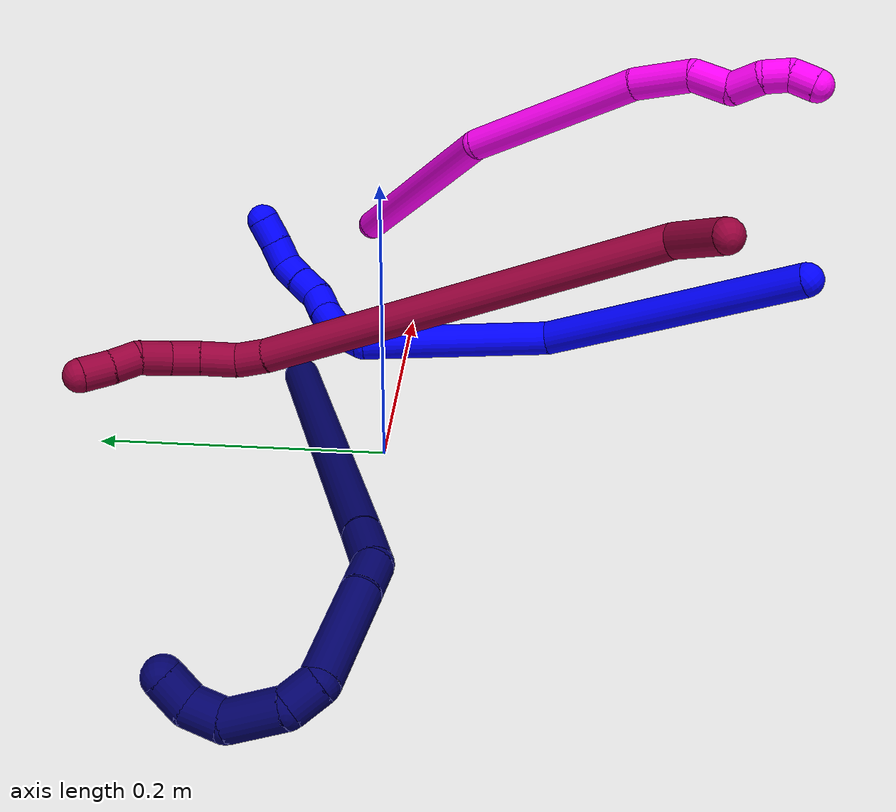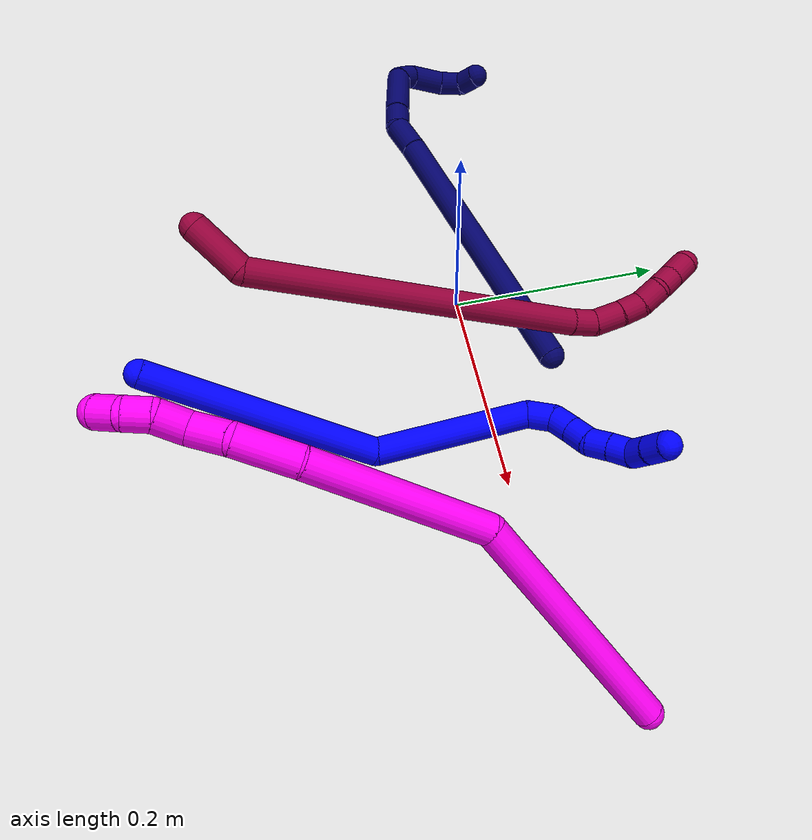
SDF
<sdf version="1.7">
 <world name="default">
  <model name="1">
   <static>0</static>
   <link name="1">
    <collision name="collision-cylinder-e_1_1_4">
     <pose>0.033847 0.066447 -0.074614 -2.41403 0.326631 -0.816934</pose>
     <geometry><cylinder><radius>0.0125</radius><length>0.210978</length></cylinder></geometry>
     <surface>
      <friction><ode><mu>1.16</mu><mu2>1.16</mu2><slip1>0</slip1><slip2>0</slip2></ode></friction>
      <contact><ode><kp>1e+06</kp><kd>1</kd><max_vel>0</max_vel><min_depth>0.001</min_depth></ode></contact>
     </surface>
    </collision>
    <visual name="visual-cylinder-e_1_1_4">
     <pose>0.033847 0.066447 -0.074614 -2.41403 0.326631 -0.816934</pose>
     <geometry><cylinder><radius>0.0125</radius><length>0.210978</length></cylinder></geometry>
     <material><ambient>0 0 1 1</ambient></material>
    </visual>
    <collision name="collision-cylinder-e_2_4_5">
     <pose>0.051176 0.173754 -0.204266 -2.50297 -0.236446 0.689781</pose>
     <geometry><cylinder><radius>0.0125</radius><length>0.14102</length></cylinder></geometry>
     <surface>
      <friction><ode><mu>1.16</mu><mu2>1.16</mu2><slip1>0</slip1><slip2>0</slip2></ode></friction>
      <contact><ode><kp>1e+06</kp><kd>1</kd><max_vel>0</max_vel><min_depth>0.001</min_depth></ode></contact>
     </surface>
    </collision>
    <visual name="visual-cylinder-e_2_4_5">
     <pose>0.051176 0.173754 -0.204266 -2.50297 -0.236446 0.689781</pose>
     <geometry><cylinder><radius>0.0125</radius><length>0.14102</length></cylinder></geometry>
     <material><ambient>0 0 1 1</ambient></material>
    </visual>
    <collision name="collision-cylinder-e_3_5_6">
     <pose>0.034077 0.226233 -0.263559 -1.92185 -0.047053 0.067329</pose>
     <geometry><cylinder><radius>0.0125</radius><length>0.024772</length></cylinder></geometry>
     <surface>
      <friction><ode><mu>1.16</mu><mu2>1.16</mu2><slip1>0</slip1><slip2>0</slip2></ode></friction>
      <contact><ode><kp>1e+06</kp><kd>1</kd><max_vel>0</max_vel><min_depth>0.001</min_depth></ode></contact>
     </surface>
    </collision>
    <visual name="visual-cylinder-e_3_5_6">
     <pose>0.034077 0.226233 -0.263559 -1.92185 -0.047053 0.067329</pose>
     <geometry><cylinder><radius>0.0125</radius><length>0.024772</length></cylinder></geometry>
     <material><ambient>0 0 1 1</ambient></material>
    </visual>
    <collision name="collision-cylinder-e_4_6_7">
     <pose>0.035555 0.248048 -0.267029 -1.49402 0.198817 -0.184197</pose>
     <geometry><cylinder><radius>0.0125</radius><length>0.020866</length></cylinder></geometry>
     <surface>
      <friction><ode><mu>1.16</mu><mu2>1.16</mu2><slip1>0</slip1><slip2>0</slip2></ode></friction>
      <contact><ode><kp>1e+06</kp><kd>1</kd><max_vel>0</max_vel><min_depth>0.001</min_depth></ode></contact>
     </surface>
    </collision>
    <visual name="visual-cylinder-e_4_6_7">
     <pose>0.035555 0.248048 -0.267029 -1.49402 0.198817 -0.184197</pose>
     <geometry><cylinder><radius>0.0125</radius><length>0.020866</length></cylinder></geometry>
     <material><ambient>0 0 1 1</ambient></material>
    </visual>
    <collision name="collision-cylinder-e_5_7_8">
     <pose>0.0391 0.268576 -0.263858 -1.34376 0.139081 -0.110679</pose>
     <geometry><cylinder><radius>0.0125</radius><length>0.021414</length></cylinder></geometry>
     <surface>
      <friction><ode><mu>1.16</mu><mu2>1.16</mu2><slip1>0</slip1><slip2>0</slip2></ode></friction>
      <contact><ode><kp>1e+06</kp><kd>1</kd><max_vel>0</max_vel><min_depth>0.001</min_depth></ode></contact>
     </surface>
    </collision>
    <visual name="visual-cylinder-e_5_7_8">
     <pose>0.0391 0.268576 -0.263858 -1.34376 0.139081 -0.110679</pose>
     <geometry><cylinder><radius>0.0125</radius><length>0.021414</length></cylinder></geometry>
     <material><ambient>0 0 1 1</ambient></material>
    </visual>
    <collision name="collision-cylinder-e_6_8_9">
     <pose>0.039728 0.289074 -0.262378 -1.6598 -0.083667 0.091456</pose>
     <geometry><cylinder><radius>0.0125</radius><length>0.020486</length></cylinder></geometry>
     <surface>
      <friction><ode><mu>1.16</mu><mu2>1.16</mu2><slip1>0</slip1><slip2>0</slip2></ode></friction>
      <contact><ode><kp>1e+06</kp><kd>1</kd><max_vel>0</max_vel><min_depth>0.001</min_depth></ode></contact>
     </surface>
    </collision>
    <visual name="visual-cylinder-e_6_8_9">
     <pose>0.039728 0.289074 -0.262378 -1.6598 -0.083667 0.091456</pose>
     <geometry><cylinder><radius>0.0125</radius><length>0.020486</length></cylinder></geometry>
     <material><ambient>0 0 1 1</ambient></material>
    </visual>
    <collision name="collision-cylinder-e_7_9_10">
     <pose>0.03846 0.309331 -0.263706 -1.61241 -0.04078 0.042512</pose>
     <geometry><cylinder><radius>0.0125</radius><length>0.020213</length></cylinder></geometry>
     <surface>
      <friction><ode><mu>1.16</mu><mu2>1.16</mu2><slip1>0</slip1><slip2>0</slip2></ode></friction>
      <contact><ode><kp>1e+06</kp><kd>1</kd><max_vel>0</max_vel><min_depth>0.001</min_depth></ode></contact>
     </surface>
    </collision>
    <visual name="visual-cylinder-e_7_9_10">
     <pose>0.03846 0.309331 -0.263706 -1.61241 -0.04078 0.042512</pose>
     <geometry><cylinder><radius>0.0125</radius><length>0.020213</length></cylinder></geometry>
     <material><ambient>0 0 1 1</ambient></material>
    </visual>
    <collision name="collision-cylinder-e_8_10_11">
     <pose>0.032662 0.327586 -0.261613 -1.27224 -0.562477 0.420412</pose>
     <geometry><cylinder><radius>0.0125</radius><length>0.020201</length></cylinder></geometry>
     <surface>
      <friction><ode><mu>1.16</mu><mu2>1.16</mu2><slip1>0</slip1><slip2>0</slip2></ode></friction>
      <contact><ode><kp>1e+06</kp><kd>1</kd><max_vel>0</max_vel><min_depth>0.001</min_depth></ode></contact>
     </surface>
    </collision>
    <visual name="visual-cylinder-e_8_10_11">
     <pose>0.032662 0.327586 -0.261613 -1.27224 -0.562477 0.420412</pose>
     <geometry><cylinder><radius>0.0125</radius><length>0.020201</length></cylinder></geometry>
     <material><ambient>0 0 1 1</ambient></material>
    </visual>
    <collision name="collision-cylinder-e_9_11_2">
     <pose>0.021776 0.343921 -0.257215 -1.34403 -0.580606 0.466666</pose>
     <geometry><cylinder><radius>0.0125</radius><length>0.020051</length></cylinder></geometry>
     <surface>
      <friction><ode><mu>1.16</mu><mu2>1.16</mu2><slip1>0</slip1><slip2>0</slip2></ode></friction>
      <contact><ode><kp>1e+06</kp><kd>1</kd><max_vel>0</max_vel><min_depth>0.001</min_depth></ode></contact>
     </surface>
    </collision>
    <visual name="visual-cylinder-e_9_11_2">
     <pose>0.021776 0.343921 -0.257215 -1.34403 -0.580606 0.466666</pose>
     <geometry><cylinder><radius>0.0125</radius><length>0.020051</length></cylinder></geometry>
     <material><ambient>0 0 1 1</ambient></material>
    </visual>
    <collision name="collision-sphere-2">
     <pose>0.016277 0.352089 -0.25533 0 -0 0</pose>
     <geometry><sphere><radius>0.0125</radius></sphere></geometry>
     <surface>
      <friction><ode><mu>1.16</mu><mu2>1.16</mu2><slip1>0</slip1><slip2>0</slip2></ode></friction>
      <contact><ode><kp>1e+06</kp><kd>1</kd><max_vel>0</max_vel><min_depth>0.001</min_depth></ode></contact>
     </surface>
    </collision>
    <visual name="visual-sphere-2">
     <pose>0.016277 0.352089 -0.25533 0 -0 0</pose>
     <geometry><sphere><radius>0.0125</radius></sphere></geometry>
     <material><ambient>0 0 1 1</ambient></material>
    </visual>
    <collision name="collision-sphere-11">
     <pose>0.027275 0.335753 -0.259099 0 -0 0</pose>
     <geometry><sphere><radius>0.0125</radius></sphere></geometry>
     <surface>
      <friction><ode><mu>1.16</mu><mu2>1.16</mu2><slip1>0</slip1><slip2>0</slip2></ode></friction>
      <contact><ode><kp>1e+06</kp><kd>1</kd><max_vel>0</max_vel><min_depth>0.001</min_depth></ode></contact>
     </surface>
    </collision>
    <visual name="visual-sphere-11">
     <pose>0.027275 0.335753 -0.259099 0 -0 0</pose>
     <geometry><sphere><radius>0.0125</radius></sphere></geometry>
     <material><ambient>0 0 1 1</ambient></material>
    </visual>
    <collision name="collision-sphere-10">
     <pose>0.038048 0.31942 -0.264126 0 -0 0</pose>
     <geometry><sphere><radius>0.0125</radius></sphere></geometry>
     <surface>
      <friction><ode><mu>1.16</mu><mu2>1.16</mu2><slip1>0</slip1><slip2>0</slip2></ode></friction>
      <contact><ode><kp>1e+06</kp><kd>1</kd><max_vel>0</max_vel><min_depth>0.001</min_depth></ode></contact>
     </surface>
    </collision>
    <visual name="visual-sphere-10">
     <pose>0.038048 0.31942 -0.264126 0 -0 0</pose>
     <geometry><sphere><radius>0.0125</radius></sphere></geometry>
     <material><ambient>0 0 1 1</ambient></material>
    </visual>
    <collision name="collision-sphere-9">
     <pose>0.038872 0.299241 -0.263286 0 -0 0</pose>
     <geometry><sphere><radius>0.0125</radius></sphere></geometry>
     <surface>
      <friction><ode><mu>1.16</mu><mu2>1.16</mu2><slip1>0</slip1><slip2>0</slip2></ode></friction>
      <contact><ode><kp>1e+06</kp><kd>1</kd><max_vel>0</max_vel><min_depth>0.001</min_depth></ode></contact>
     </surface>
    </collision>
    <visual name="visual-sphere-9">
     <pose>0.038872 0.299241 -0.263286 0 -0 0</pose>
     <geometry><sphere><radius>0.0125</radius></sphere></geometry>
     <material><ambient>0 0 1 1</ambient></material>
    </visual>
    <collision name="collision-sphere-4">
     <pose>0.067693 0.132894 -0.149227 0 -0 0</pose>
     <geometry><sphere><radius>0.0125</radius></sphere></geometry>
     <surface>
      <friction><ode><mu>1.16</mu><mu2>1.16</mu2><slip1>0</slip1><slip2>0</slip2></ode></friction>
      <contact><ode><kp>1e+06</kp><kd>1</kd><max_vel>0</max_vel><min_depth>0.001</min_depth></ode></contact>
     </surface>
    </collision>
    <visual name="visual-sphere-4">
     <pose>0.067693 0.132894 -0.149227 0 -0 0</pose>
     <geometry><sphere><radius>0.0125</radius></sphere></geometry>
     <material><ambient>0 0 1 1</ambient></material>
    </visual>
    <collision name="collision-sphere-1">
     <geometry><sphere><radius>0.0125</radius></sphere></geometry>
     <surface>
      <friction><ode><mu>1.16</mu><mu2>1.16</mu2><slip1>0</slip1><slip2>0</slip2></ode></friction>
      <contact><ode><kp>1e+06</kp><kd>1</kd><max_vel>0</max_vel><min_depth>0.001</min_depth></ode></contact>
     </surface>
    </collision>
    <visual name="visual-sphere-1">
     <geometry><sphere><radius>0.0125</radius></sphere></geometry>
     <material><ambient>0 0 1 1</ambient></material>
    </visual>
    <collision name="collision-sphere-8">
     <pose>0.040584 0.278908 -0.261471 0 -0 0</pose>
     <geometry><sphere><radius>0.0125</radius></sphere></geometry>
     <surface>
      <friction><ode><mu>1.16</mu><mu2>1.16</mu2><slip1>0</slip1><slip2>0</slip2></ode></friction>
      <contact><ode><kp>1e+06</kp><kd>1</kd><max_vel>0</max_vel><min_depth>0.001</min_depth></ode></contact>
     </surface>
    </collision>
    <visual name="visual-sphere-8">
     <pose>0.040584 0.278908 -0.261471 0 -0 0</pose>
     <geometry><sphere><radius>0.0125</radius></sphere></geometry>
     <material><ambient>0 0 1 1</ambient></material>
    </visual>
    <collision name="collision-sphere-5">
     <pose>0.034659 0.214615 -0.259304 0 -0 0</pose>
     <geometry><sphere><radius>0.0125</radius></sphere></geometry>
     <surface>
      <friction><ode><mu>1.16</mu><mu2>1.16</mu2><slip1>0</slip1><slip2>0</slip2></ode></friction>
      <contact><ode><kp>1e+06</kp><kd>1</kd><max_vel>0</max_vel><min_depth>0.001</min_depth></ode></contact>
     </surface>
    </collision>
    <visual name="visual-sphere-5">
     <pose>0.034659 0.214615 -0.259304 0 -0 0</pose>
     <geometry><sphere><radius>0.0125</radius></sphere></geometry>
     <material><ambient>0 0 1 1</ambient></material>
    </visual>
    <collision name="collision-sphere-6">
     <pose>0.033494 0.237851 -0.267813 0 -0 0</pose>
     <geometry><sphere><radius>0.0125</radius></sphere></geometry>
     <surface>
      <friction><ode><mu>1.16</mu><mu2>1.16</mu2><slip1>0</slip1><slip2>0</slip2></ode></friction>
      <contact><ode><kp>1e+06</kp><kd>1</kd><max_vel>0</max_vel><min_depth>0.001</min_depth></ode></contact>
     </surface>
    </collision>
    <visual name="visual-sphere-6">
     <pose>0.033494 0.237851 -0.267813 0 -0 0</pose>
     <geometry><sphere><radius>0.0125</radius></sphere></geometry>
     <material><ambient>0 0 1 1</ambient></material>
    </visual>
    <collision name="collision-sphere-7">
     <pose>0.037615 0.258245 -0.266245 0 -0 0</pose>
     <geometry><sphere><radius>0.0125</radius></sphere></geometry>
     <surface>
      <friction><ode><mu>1.16</mu><mu2>1.16</mu2><slip1>0</slip1><slip2>0</slip2></ode></friction>
      <contact><ode><kp>1e+06</kp><kd>1</kd><max_vel>0</max_vel><min_depth>0.001</min_depth></ode></contact>
     </surface>
    </collision>
    <visual name="visual-sphere-7">
     <pose>0.037615 0.258245 -0.266245 0 -0 0</pose>
     <geometry><sphere><radius>0.0125</radius></sphere></geometry>
     <material><ambient>0 0 1 1</ambient></material>
    </visual>
    <inertial>
     <pose>0.038938 0.161481 -0.166891 0 -0 0</pose>
     <mass>0.5</mass>
     <inertia>
      <ixx>0.000307</ixx>
      <ixy>0</ixy>
      <ixz>0</ixz>
      <iyy>-0.000777</iyy>
      <iyz>0</iyz>
      <izz>-0.000864</izz>
     </inertia>
    </inertial>
   </link>
   <pose>0.085529 -0.288502 0.103766 0.561407 0.904912 -0.360126</pose>
  </model>
  <model name="7">
   <static>0</static>
   <link name="7">
    <collision name="collision-cylinder-e_1_1_4">
     <pose>-0.022086 -0.013211 0.132329 0.099504 -0.164574 -0.008213</pose>
     <geometry><cylinder><radius>0.0125</radius><length>0.269617</length></cylinder></geometry>
     <surface>
      <friction><ode><mu>1.16</mu><mu2>1.16</mu2><slip1>0</slip1><slip2>0</slip2></ode></friction>
      <contact><ode><kp>1e+06</kp><kd>1</kd><max_vel>0</max_vel><min_depth>0.001</min_depth></ode></contact>
     </surface>
    </collision>
    <visual name="visual-cylinder-e_1_1_4">
     <pose>-0.022086 -0.013211 0.132329 0.099504 -0.164574 -0.008213</pose>
     <geometry><cylinder><radius>0.0125</radius><length>0.269617</length></cylinder></geometry>
     <material><ambient>0.003922 0 0.403922 1</ambient></material>
    </visual>
    <collision name="collision-cylinder-e_2_4_5">
     <pose>-0.047737 -0.026728 0.281282 0.018406 -0.211229 -0.001951</pose>
     <geometry><cylinder><radius>0.0125</radius><length>0.034011</length></cylinder></geometry>
     <surface>
      <friction><ode><mu>1.16</mu><mu2>1.16</mu2><slip1>0</slip1><slip2>0</slip2></ode></friction>
      <contact><ode><kp>1e+06</kp><kd>1</kd><max_vel>0</max_vel><min_depth>0.001</min_depth></ode></contact>
     </surface>
    </collision>
    <visual name="visual-cylinder-e_2_4_5">
     <pose>-0.047737 -0.026728 0.281282 0.018406 -0.211229 -0.001951</pose>
     <geometry><cylinder><radius>0.0125</radius><length>0.034011</length></cylinder></geometry>
     <material><ambient>0.003922 0 0.403922 1</ambient></material>
    </visual>
    <collision name="collision-cylinder-e_3_5_6">
     <pose>-0.048862 -0.024054 0.309742 -0.246644 0.197402 -0.024547</pose>
     <geometry><cylinder><radius>0.0125</radius><length>0.024892</length></cylinder></geometry>
     <surface>
      <friction><ode><mu>1.16</mu><mu2>1.16</mu2><slip1>0</slip1><slip2>0</slip2></ode></friction>
      <contact><ode><kp>1e+06</kp><kd>1</kd><max_vel>0</max_vel><min_depth>0.001</min_depth></ode></contact>
     </surface>
    </collision>
    <visual name="visual-cylinder-e_3_5_6">
     <pose>-0.048862 -0.024054 0.309742 -0.246644 0.197402 -0.024547</pose>
     <geometry><cylinder><radius>0.0125</radius><length>0.024892</length></cylinder></geometry>
     <material><ambient>0.003922 0 0.403922 1</ambient></material>
    </visual>
    <collision name="collision-cylinder-e_4_6_7">
     <pose>-0.039685 -0.008521 0.35276 -0.382728 0.197775 -0.038437</pose>
     <geometry><cylinder><radius>0.0125</radius><length>0.068566</length></cylinder></geometry>
     <surface>
      <friction><ode><mu>1.16</mu><mu2>1.16</mu2><slip1>0</slip1><slip2>0</slip2></ode></friction>
      <contact><ode><kp>1e+06</kp><kd>1</kd><max_vel>0</max_vel><min_depth>0.001</min_depth></ode></contact>
     </surface>
    </collision>
    <visual name="visual-cylinder-e_4_6_7">
     <pose>-0.039685 -0.008521 0.35276 -0.382728 0.197775 -0.038437</pose>
     <geometry><cylinder><radius>0.0125</radius><length>0.068566</length></cylinder></geometry>
     <material><ambient>0.003922 0 0.403922 1</ambient></material>
    </visual>
    <collision name="collision-cylinder-e_5_7_8">
     <pose>-0.026763 0.011539 0.387875 -1.08818 0.630475 -0.389594</pose>
     <geometry><cylinder><radius>0.0125</radius><length>0.020983</length></cylinder></geometry>
     <surface>
      <friction><ode><mu>1.16</mu><mu2>1.16</mu2><slip1>0</slip1><slip2>0</slip2></ode></friction>
      <contact><ode><kp>1e+06</kp><kd>1</kd><max_vel>0</max_vel><min_depth>0.001</min_depth></ode></contact>
     </surface>
    </collision>
    <visual name="visual-cylinder-e_5_7_8">
     <pose>-0.026763 0.011539 0.387875 -1.08818 0.630475 -0.389594</pose>
     <geometry><cylinder><radius>0.0125</radius><length>0.020983</length></cylinder></geometry>
     <material><ambient>0.003922 0 0.403922 1</ambient></material>
    </visual>
    <collision name="collision-cylinder-e_6_8_9">
     <pose>-0.006942 0.031026 0.388006 -1.87815 0.826098 -1.07924</pose>
     <geometry><cylinder><radius>0.0125</radius><length>0.03709</length></cylinder></geometry>
     <surface>
      <friction><ode><mu>1.16</mu><mu2>1.16</mu2><slip1>0</slip1><slip2>0</slip2></ode></friction>
      <contact><ode><kp>1e+06</kp><kd>1</kd><max_vel>0</max_vel><min_depth>0.001</min_depth></ode></contact>
     </surface>
    </collision>
    <visual name="visual-cylinder-e_6_8_9">
     <pose>-0.006942 0.031026 0.388006 -1.87815 0.826098 -1.07924</pose>
     <geometry><cylinder><radius>0.0125</radius><length>0.03709</length></cylinder></geometry>
     <material><ambient>0.003922 0 0.403922 1</ambient></material>
    </visual>
    <collision name="collision-cylinder-e_7_9_10">
     <pose>0.017217 0.044962 0.378958 -2.78464 1.08185 -2.5581</pose>
     <geometry><cylinder><radius>0.0125</radius><length>0.023839</length></cylinder></geometry>
     <surface>
      <friction><ode><mu>1.16</mu><mu2>1.16</mu2><slip1>0</slip1><slip2>0</slip2></ode></friction>
      <contact><ode><kp>1e+06</kp><kd>1</kd><max_vel>0</max_vel><min_depth>0.001</min_depth></ode></contact>
     </surface>
    </collision>
    <visual name="visual-cylinder-e_7_9_10">
     <pose>0.017217 0.044962 0.378958 -2.78464 1.08185 -2.5581</pose>
     <geometry><cylinder><radius>0.0125</radius><length>0.023839</length></cylinder></geometry>
     <material><ambient>0.003922 0 0.403922 1</ambient></material>
    </visual>
    <collision name="collision-cylinder-e_8_10_2">
     <pose>0.036776 0.042577 0.370585 2.19503 1.03621 1.6778</pose>
     <geometry><cylinder><radius>0.0125</radius><length>0.021002</length></cylinder></geometry>
     <surface>
      <friction><ode><mu>1.16</mu><mu2>1.16</mu2><slip1>0</slip1><slip2>0</slip2></ode></friction>
      <contact><ode><kp>1e+06</kp><kd>1</kd><max_vel>0</max_vel><min_depth>0.001</min_depth></ode></contact>
     </surface>
    </collision>
    <visual name="visual-cylinder-e_8_10_2">
     <pose>0.036776 0.042577 0.370585 2.19503 1.03621 1.6778</pose>
     <geometry><cylinder><radius>0.0125</radius><length>0.021002</length></cylinder></geometry>
     <material><ambient>0.003922 0 0.403922 1</ambient></material>
    </visual>
    <collision name="collision-sphere-2">
     <pose>0.045812 0.038236 0.367458 0 -0 0</pose>
     <geometry><sphere><radius>0.0125</radius></sphere></geometry>
     <surface>
      <friction><ode><mu>1.16</mu><mu2>1.16</mu2><slip1>0</slip1><slip2>0</slip2></ode></friction>
      <contact><ode><kp>1e+06</kp><kd>1</kd><max_vel>0</max_vel><min_depth>0.001</min_depth></ode></contact>
     </surface>
    </collision>
    <visual name="visual-sphere-2">
     <pose>0.045812 0.038236 0.367458 0 -0 0</pose>
     <geometry><sphere><radius>0.0125</radius></sphere></geometry>
     <material><ambient>0.003922 0 0.403922 1</ambient></material>
    </visual>
    <collision name="collision-sphere-10">
     <pose>0.02774 0.046918 0.373712 0 -0 0</pose>
     <geometry><sphere><radius>0.0125</radius></sphere></geometry>
     <surface>
      <friction><ode><mu>1.16</mu><mu2>1.16</mu2><slip1>0</slip1><slip2>0</slip2></ode></friction>
      <contact><ode><kp>1e+06</kp><kd>1</kd><max_vel>0</max_vel><min_depth>0.001</min_depth></ode></contact>
     </surface>
    </collision>
    <visual name="visual-sphere-10">
     <pose>0.02774 0.046918 0.373712 0 -0 0</pose>
     <geometry><sphere><radius>0.0125</radius></sphere></geometry>
     <material><ambient>0.003922 0 0.403922 1</ambient></material>
    </visual>
    <collision name="collision-sphere-9">
     <pose>0.006694 0.043006 0.384203 0 -0 0</pose>
     <geometry><sphere><radius>0.0125</radius></sphere></geometry>
     <surface>
      <friction><ode><mu>1.16</mu><mu2>1.16</mu2><slip1>0</slip1><slip2>0</slip2></ode></friction>
      <contact><ode><kp>1e+06</kp><kd>1</kd><max_vel>0</max_vel><min_depth>0.001</min_depth></ode></contact>
     </surface>
    </collision>
    <visual name="visual-sphere-9">
     <pose>0.006694 0.043006 0.384203 0 -0 0</pose>
     <geometry><sphere><radius>0.0125</radius></sphere></geometry>
     <material><ambient>0.003922 0 0.403922 1</ambient></material>
    </visual>
    <collision name="collision-sphere-4">
     <pose>-0.044172 -0.026422 0.264658 0 -0 0</pose>
     <geometry><sphere><radius>0.0125</radius></sphere></geometry>
     <surface>
      <friction><ode><mu>1.16</mu><mu2>1.16</mu2><slip1>0</slip1><slip2>0</slip2></ode></friction>
      <contact><ode><kp>1e+06</kp><kd>1</kd><max_vel>0</max_vel><min_depth>0.001</min_depth></ode></contact>
     </surface>
    </collision>
    <visual name="visual-sphere-4">
     <pose>-0.044172 -0.026422 0.264658 0 -0 0</pose>
     <geometry><sphere><radius>0.0125</radius></sphere></geometry>
     <material><ambient>0.003922 0 0.403922 1</ambient></material>
    </visual>
    <collision name="collision-sphere-1">
     <geometry><sphere><radius>0.0125</radius></sphere></geometry>
     <surface>
      <friction><ode><mu>1.16</mu><mu2>1.16</mu2><slip1>0</slip1><slip2>0</slip2></ode></friction>
      <contact><ode><kp>1e+06</kp><kd>1</kd><max_vel>0</max_vel><min_depth>0.001</min_depth></ode></contact>
     </surface>
    </collision>
    <visual name="visual-sphere-1">
     <geometry><sphere><radius>0.0125</radius></sphere></geometry>
     <material><ambient>0.003922 0 0.403922 1</ambient></material>
    </visual>
    <collision name="collision-sphere-8">
     <pose>-0.020578 0.019046 0.391808 0 -0 0</pose>
     <geometry><sphere><radius>0.0125</radius></sphere></geometry>
     <surface>
      <friction><ode><mu>1.16</mu><mu2>1.16</mu2><slip1>0</slip1><slip2>0</slip2></ode></friction>
      <contact><ode><kp>1e+06</kp><kd>1</kd><max_vel>0</max_vel><min_depth>0.001</min_depth></ode></contact>
     </surface>
    </collision>
    <visual name="visual-sphere-8">
     <pose>-0.020578 0.019046 0.391808 0 -0 0</pose>
     <geometry><sphere><radius>0.0125</radius></sphere></geometry>
     <material><ambient>0.003922 0 0.403922 1</ambient></material>
    </visual>
    <collision name="collision-sphere-5">
     <pose>-0.051303 -0.027034 0.297907 0 -0 0</pose>
     <geometry><sphere><radius>0.0125</radius></sphere></geometry>
     <surface>
      <friction><ode><mu>1.16</mu><mu2>1.16</mu2><slip1>0</slip1><slip2>0</slip2></ode></friction>
      <contact><ode><kp>1e+06</kp><kd>1</kd><max_vel>0</max_vel><min_depth>0.001</min_depth></ode></contact>
     </surface>
    </collision>
    <visual name="visual-sphere-5">
     <pose>-0.051303 -0.027034 0.297907 0 -0 0</pose>
     <geometry><sphere><radius>0.0125</radius></sphere></geometry>
     <material><ambient>0.003922 0 0.403922 1</ambient></material>
    </visual>
    <collision name="collision-sphere-6">
     <pose>-0.046421 -0.021074 0.321577 0 -0 0</pose>
     <geometry><sphere><radius>0.0125</radius></sphere></geometry>
     <surface>
      <friction><ode><mu>1.16</mu><mu2>1.16</mu2><slip1>0</slip1><slip2>0</slip2></ode></friction>
      <contact><ode><kp>1e+06</kp><kd>1</kd><max_vel>0</max_vel><min_depth>0.001</min_depth></ode></contact>
     </surface>
    </collision>
    <visual name="visual-sphere-6">
     <pose>-0.046421 -0.021074 0.321577 0 -0 0</pose>
     <geometry><sphere><radius>0.0125</radius></sphere></geometry>
     <material><ambient>0.003922 0 0.403922 1</ambient></material>
    </visual>
    <collision name="collision-sphere-7">
     <pose>-0.032948 0.004032 0.383942 0 -0 0</pose>
     <geometry><sphere><radius>0.0125</radius></sphere></geometry>
     <surface>
      <friction><ode><mu>1.16</mu><mu2>1.16</mu2><slip1>0</slip1><slip2>0</slip2></ode></friction>
      <contact><ode><kp>1e+06</kp><kd>1</kd><max_vel>0</max_vel><min_depth>0.001</min_depth></ode></contact>
     </surface>
    </collision>
    <visual name="visual-sphere-7">
     <pose>-0.032948 0.004032 0.383942 0 -0 0</pose>
     <geometry><sphere><radius>0.0125</radius></sphere></geometry>
     <material><ambient>0.003922 0 0.403922 1</ambient></material>
    </visual>
    <inertial>
     <pose>-0.022304 -0.00459 0.232979 0 -0 0</pose>
     <mass>0.5</mass>
     <inertia>
      <ixx>0.001645</ixx>
      <ixy>0</ixy>
      <ixz>0</ixz>
      <iyy>0.001662</iyy>
      <iyz>0</iyz>
      <izz>0.00043</izz>
     </inertia>
    </inertial>
   </link>
   <pose>0.084771 0.070872 0.012054 -1.46655 -0.346912 1.63983</pose>
  </model>
  <model name="8">
   <static>0</static>
   <link name="8">
    <collision name="collision-cylinder-e_1_1_4">
     <pose>0.003102 0.015959 0.020476 -0.662056 0.11891 -0.040909</pose>
     <geometry><cylinder><radius>0.0125</radius><length>0.05229</length></cylinder></geometry>
     <surface>
      <friction><ode><mu>1.16</mu><mu2>1.16</mu2><slip1>0</slip1><slip2>0</slip2></ode></friction>
      <contact><ode><kp>1e+06</kp><kd>1</kd><max_vel>0</max_vel><min_depth>0.001</min_depth></ode></contact>
     </surface>
    </collision>
    <visual name="visual-cylinder-e_1_1_4">
     <pose>0.003102 0.015959 0.020476 -0.662056 0.11891 -0.040909</pose>
     <geometry><cylinder><radius>0.0125</radius><length>0.05229</length></cylinder></geometry>
     <material><ambient>0.584314 0 0.227451 1</ambient></material>
    </visual>
    <collision name="collision-cylinder-e_2_4_5">
     <pose>-0.028452 0.17503 0.086325 -1.26377 -0.22686 0.166394</pose>
     <geometry><cylinder><radius>0.0125</radius><length>0.30816</length></cylinder></geometry>
     <surface>
      <friction><ode><mu>1.16</mu><mu2>1.16</mu2><slip1>0</slip1><slip2>0</slip2></ode></friction>
      <contact><ode><kp>1e+06</kp><kd>1</kd><max_vel>0</max_vel><min_depth>0.001</min_depth></ode></contact>
     </surface>
    </collision>
    <visual name="visual-cylinder-e_2_4_5">
     <pose>-0.028452 0.17503 0.086325 -1.26377 -0.22686 0.166394</pose>
     <geometry><cylinder><radius>0.0125</radius><length>0.30816</length></cylinder></geometry>
     <material><ambient>0.584314 0 0.227451 1</ambient></material>
    </visual>
    <collision name="collision-cylinder-e_3_5_6">
     <pose>-0.067037 0.328419 0.135154 -1.24645 -0.347642 0.2511</pose>
     <geometry><cylinder><radius>0.0125</radius><length>0.023067</length></cylinder></geometry>
     <surface>
      <friction><ode><mu>1.16</mu><mu2>1.16</mu2><slip1>0</slip1><slip2>0</slip2></ode></friction>
      <contact><ode><kp>1e+06</kp><kd>1</kd><max_vel>0</max_vel><min_depth>0.001</min_depth></ode></contact>
     </surface>
    </collision>
    <visual name="visual-cylinder-e_3_5_6">
     <pose>-0.067037 0.328419 0.135154 -1.24645 -0.347642 0.2511</pose>
     <geometry><cylinder><radius>0.0125</radius><length>0.023067</length></cylinder></geometry>
     <material><ambient>0.584314 0 0.227451 1</ambient></material>
    </visual>
    <collision name="collision-cylinder-e_4_6_7">
     <pose>-0.080149 0.348523 0.140353 -1.39519 -0.74382 0.631982</pose>
     <geometry><cylinder><radius>0.0125</radius><length>0.027122</length></cylinder></geometry>
     <surface>
      <friction><ode><mu>1.16</mu><mu2>1.16</mu2><slip1>0</slip1><slip2>0</slip2></ode></friction>
      <contact><ode><kp>1e+06</kp><kd>1</kd><max_vel>0</max_vel><min_depth>0.001</min_depth></ode></contact>
     </surface>
    </collision>
    <visual name="visual-cylinder-e_4_6_7">
     <pose>-0.080149 0.348523 0.140353 -1.39519 -0.74382 0.631982</pose>
     <geometry><cylinder><radius>0.0125</radius><length>0.027122</length></cylinder></geometry>
     <material><ambient>0.584314 0 0.227451 1</ambient></material>
    </visual>
    <collision name="collision-cylinder-e_5_7_8">
     <pose>-0.096638 0.366282 0.142453 -1.52589 -0.743853 0.713936</pose>
     <geometry><cylinder><radius>0.0125</radius><length>0.021583</length></cylinder></geometry>
     <surface>
      <friction><ode><mu>1.16</mu><mu2>1.16</mu2><slip1>0</slip1><slip2>0</slip2></ode></friction>
      <contact><ode><kp>1e+06</kp><kd>1</kd><max_vel>0</max_vel><min_depth>0.001</min_depth></ode></contact>
     </surface>
    </collision>
    <visual name="visual-cylinder-e_5_7_8">
     <pose>-0.096638 0.366282 0.142453 -1.52589 -0.743853 0.713936</pose>
     <geometry><cylinder><radius>0.0125</radius><length>0.021583</length></cylinder></geometry>
     <material><ambient>0.584314 0 0.227451 1</ambient></material>
    </visual>
    <collision name="collision-cylinder-e_6_8_9">
     <pose>-0.113325 0.381332 0.140514 -1.88271 -0.897749 1.16869</pose>
     <geometry><cylinder><radius>0.0125</radius><length>0.023991</length></cylinder></geometry>
     <surface>
      <friction><ode><mu>1.16</mu><mu2>1.16</mu2><slip1>0</slip1><slip2>0</slip2></ode></friction>
      <contact><ode><kp>1e+06</kp><kd>1</kd><max_vel>0</max_vel><min_depth>0.001</min_depth></ode></contact>
     </surface>
    </collision>
    <visual name="visual-cylinder-e_6_8_9">
     <pose>-0.113325 0.381332 0.140514 -1.88271 -0.897749 1.16869</pose>
     <geometry><cylinder><radius>0.0125</radius><length>0.023991</length></cylinder></geometry>
     <material><ambient>0.584314 0 0.227451 1</ambient></material>
    </visual>
    <collision name="collision-cylinder-e_7_9_10">
     <pose>-0.128126 0.396444 0.134514 -2.0048 -0.551539 0.834114</pose>
     <geometry><cylinder><radius>0.0125</radius><length>0.020693</length></cylinder></geometry>
     <surface>
      <friction><ode><mu>1.16</mu><mu2>1.16</mu2><slip1>0</slip1><slip2>0</slip2></ode></friction>
      <contact><ode><kp>1e+06</kp><kd>1</kd><max_vel>0</max_vel><min_depth>0.001</min_depth></ode></contact>
     </surface>
    </collision>
    <visual name="visual-cylinder-e_7_9_10">
     <pose>-0.128126 0.396444 0.134514 -2.0048 -0.551539 0.834114</pose>
     <geometry><cylinder><radius>0.0125</radius><length>0.020693</length></cylinder></geometry>
     <material><ambient>0.584314 0 0.227451 1</ambient></material>
    </visual>
    <collision name="collision-cylinder-e_8_10_2">
     <pose>-0.140521 0.412727 0.126804 -2.02089 -0.648411 0.98346</pose>
     <geometry><cylinder><radius>0.0125</radius><length>0.023094</length></cylinder></geometry>
     <surface>
      <friction><ode><mu>1.16</mu><mu2>1.16</mu2><slip1>0</slip1><slip2>0</slip2></ode></friction>
      <contact><ode><kp>1e+06</kp><kd>1</kd><max_vel>0</max_vel><min_depth>0.001</min_depth></ode></contact>
     </surface>
    </collision>
    <visual name="visual-cylinder-e_8_10_2">
     <pose>-0.140521 0.412727 0.126804 -2.02089 -0.648411 0.98346</pose>
     <geometry><cylinder><radius>0.0125</radius><length>0.023094</length></cylinder></geometry>
     <material><ambient>0.584314 0 0.227451 1</ambient></material>
    </visual>
    <collision name="collision-sphere-2">
     <pose>-0.147494 0.421013 0.1228 0 -0 0</pose>
     <geometry><sphere><radius>0.0125</radius></sphere></geometry>
     <surface>
      <friction><ode><mu>1.16</mu><mu2>1.16</mu2><slip1>0</slip1><slip2>0</slip2></ode></friction>
      <contact><ode><kp>1e+06</kp><kd>1</kd><max_vel>0</max_vel><min_depth>0.001</min_depth></ode></contact>
     </surface>
    </collision>
    <visual name="visual-sphere-2">
     <pose>-0.147494 0.421013 0.1228 0 -0 0</pose>
     <geometry><sphere><radius>0.0125</radius></sphere></geometry>
     <material><ambient>0.584314 0 0.227451 1</ambient></material>
    </visual>
    <collision name="collision-sphere-10">
     <pose>-0.133547 0.40444 0.130808 0 -0 0</pose>
     <geometry><sphere><radius>0.0125</radius></sphere></geometry>
     <surface>
      <friction><ode><mu>1.16</mu><mu2>1.16</mu2><slip1>0</slip1><slip2>0</slip2></ode></friction>
      <contact><ode><kp>1e+06</kp><kd>1</kd><max_vel>0</max_vel><min_depth>0.001</min_depth></ode></contact>
     </surface>
    </collision>
    <visual name="visual-sphere-10">
     <pose>-0.133547 0.40444 0.130808 0 -0 0</pose>
     <geometry><sphere><radius>0.0125</radius></sphere></geometry>
     <material><ambient>0.584314 0 0.227451 1</ambient></material>
    </visual>
    <collision name="collision-sphere-9">
     <pose>-0.122704 0.388449 0.13822 0 -0 0</pose>
     <geometry><sphere><radius>0.0125</radius></sphere></geometry>
     <surface>
      <friction><ode><mu>1.16</mu><mu2>1.16</mu2><slip1>0</slip1><slip2>0</slip2></ode></friction>
      <contact><ode><kp>1e+06</kp><kd>1</kd><max_vel>0</max_vel><min_depth>0.001</min_depth></ode></contact>
     </surface>
    </collision>
    <visual name="visual-sphere-9">
     <pose>-0.122704 0.388449 0.13822 0 -0 0</pose>
     <geometry><sphere><radius>0.0125</radius></sphere></geometry>
     <material><ambient>0.584314 0 0.227451 1</ambient></material>
    </visual>
    <collision name="collision-sphere-4">
     <pose>0.006203 0.031918 0.040951 0 -0 0</pose>
     <geometry><sphere><radius>0.0125</radius></sphere></geometry>
     <surface>
      <friction><ode><mu>1.16</mu><mu2>1.16</mu2><slip1>0</slip1><slip2>0</slip2></ode></friction>
      <contact><ode><kp>1e+06</kp><kd>1</kd><max_vel>0</max_vel><min_depth>0.001</min_depth></ode></contact>
     </surface>
    </collision>
    <visual name="visual-sphere-4">
     <pose>0.006203 0.031918 0.040951 0 -0 0</pose>
     <geometry><sphere><radius>0.0125</radius></sphere></geometry>
     <material><ambient>0.584314 0 0.227451 1</ambient></material>
    </visual>
    <collision name="collision-sphere-1">
     <geometry><sphere><radius>0.0125</radius></sphere></geometry>
     <surface>
      <friction><ode><mu>1.16</mu><mu2>1.16</mu2><slip1>0</slip1><slip2>0</slip2></ode></friction>
      <contact><ode><kp>1e+06</kp><kd>1</kd><max_vel>0</max_vel><min_depth>0.001</min_depth></ode></contact>
     </surface>
    </collision>
    <visual name="visual-sphere-1">
     <geometry><sphere><radius>0.0125</radius></sphere></geometry>
     <material><ambient>0.584314 0 0.227451 1</ambient></material>
    </visual>
    <collision name="collision-sphere-8">
     <pose>-0.103945 0.374216 0.142809 0 -0 0</pose>
     <geometry><sphere><radius>0.0125</radius></sphere></geometry>
     <surface>
      <friction><ode><mu>1.16</mu><mu2>1.16</mu2><slip1>0</slip1><slip2>0</slip2></ode></friction>
      <contact><ode><kp>1e+06</kp><kd>1</kd><max_vel>0</max_vel><min_depth>0.001</min_depth></ode></contact>
     </surface>
    </collision>
    <visual name="visual-sphere-8">
     <pose>-0.103945 0.374216 0.142809 0 -0 0</pose>
     <geometry><sphere><radius>0.0125</radius></sphere></geometry>
     <material><ambient>0.584314 0 0.227451 1</ambient></material>
    </visual>
    <collision name="collision-sphere-5">
     <pose>-0.063108 0.318141 0.131698 0 -0 0</pose>
     <geometry><sphere><radius>0.0125</radius></sphere></geometry>
     <surface>
      <friction><ode><mu>1.16</mu><mu2>1.16</mu2><slip1>0</slip1><slip2>0</slip2></ode></friction>
      <contact><ode><kp>1e+06</kp><kd>1</kd><max_vel>0</max_vel><min_depth>0.001</min_depth></ode></contact>
     </surface>
    </collision>
    <visual name="visual-sphere-5">
     <pose>-0.063108 0.318141 0.131698 0 -0 0</pose>
     <geometry><sphere><radius>0.0125</radius></sphere></geometry>
     <material><ambient>0.584314 0 0.227451 1</ambient></material>
    </visual>
    <collision name="collision-sphere-6">
     <pose>-0.070966 0.338698 0.138609 0 -0 0</pose>
     <geometry><sphere><radius>0.0125</radius></sphere></geometry>
     <surface>
      <friction><ode><mu>1.16</mu><mu2>1.16</mu2><slip1>0</slip1><slip2>0</slip2></ode></friction>
      <contact><ode><kp>1e+06</kp><kd>1</kd><max_vel>0</max_vel><min_depth>0.001</min_depth></ode></contact>
     </surface>
    </collision>
    <visual name="visual-sphere-6">
     <pose>-0.070966 0.338698 0.138609 0 -0 0</pose>
     <geometry><sphere><radius>0.0125</radius></sphere></geometry>
     <material><ambient>0.584314 0 0.227451 1</ambient></material>
    </visual>
    <collision name="collision-sphere-7">
     <pose>-0.089331 0.358349 0.142096 0 -0 0</pose>
     <geometry><sphere><radius>0.0125</radius></sphere></geometry>
     <surface>
      <friction><ode><mu>1.16</mu><mu2>1.16</mu2><slip1>0</slip1><slip2>0</slip2></ode></friction>
      <contact><ode><kp>1e+06</kp><kd>1</kd><max_vel>0</max_vel><min_depth>0.001</min_depth></ode></contact>
     </surface>
    </collision>
    <visual name="visual-sphere-7">
     <pose>-0.089331 0.358349 0.142096 0 -0 0</pose>
     <geometry><sphere><radius>0.0125</radius></sphere></geometry>
     <material><ambient>0.584314 0 0.227451 1</ambient></material>
    </visual>
    <inertial>
     <pose>-0.046054 0.213178 0.093508 0 -0 0</pose>
     <mass>0.5</mass>
     <inertia>
      <ixx>0.002765</ixx>
      <ixy>0</ixy>
      <ixz>0</ixz>
      <iyy>0.001267</iyy>
      <iyz>0</iyz>
      <izz>-0.001727</izz>
     </inertia>
    </inertial>
   </link>
   <pose>0.000254 -0.222628 0.173024 -1.42363 0.892052 -1.20186</pose>
  </model>
  <model name="10">
   <static>0</static>
   <link name="10">
    <collision name="collision-cylinder-e_1_1_4">
     <pose>-0.054397 -0.012657 -0.084609 2.9931 -0.56636 -2.64109</pose>
     <geometry><cylinder><radius>0.0125</radius><length>0.20276</length></cylinder></geometry>
     <surface>
      <friction><ode><mu>1.16</mu><mu2>1.16</mu2><slip1>0</slip1><slip2>0</slip2></ode></friction>
      <contact><ode><kp>1e+06</kp><kd>1</kd><max_vel>0</max_vel><min_depth>0.001</min_depth></ode></contact>
     </surface>
    </collision>
    <visual name="visual-cylinder-e_1_1_4">
     <pose>-0.054397 -0.012657 -0.084609 2.9931 -0.56636 -2.64109</pose>
     <geometry><cylinder><radius>0.0125</radius><length>0.20276</length></cylinder></geometry>
     <material><ambient>1 0 0.964706 1</ambient></material>
    </visual>
    <collision name="collision-cylinder-e_2_4_5">
     <pose>-0.160337 -0.05975 -0.210793 2.44985 -0.762263 -1.67677</pose>
     <geometry><cylinder><radius>0.0125</radius><length>0.149279</length></cylinder></geometry>
     <surface>
      <friction><ode><mu>1.16</mu><mu2>1.16</mu2><slip1>0</slip1><slip2>0</slip2></ode></friction>
      <contact><ode><kp>1e+06</kp><kd>1</kd><max_vel>0</max_vel><min_depth>0.001</min_depth></ode></contact>
     </surface>
    </collision>
    <visual name="visual-cylinder-e_2_4_5">
     <pose>-0.160337 -0.05975 -0.210793 2.44985 -0.762263 -1.67677</pose>
     <geometry><cylinder><radius>0.0125</radius><length>0.149279</length></cylinder></geometry>
     <material><ambient>1 0 0.964706 1</ambient></material>
    </visual>
    <collision name="collision-cylinder-e_3_5_6">
     <pose>-0.225369 -0.108986 -0.266775 2.34273 -0.578566 -1.22826</pose>
     <geometry><cylinder><radius>0.0125</radius><length>0.049337</length></cylinder></geometry>
     <surface>
      <friction><ode><mu>1.16</mu><mu2>1.16</mu2><slip1>0</slip1><slip2>0</slip2></ode></friction>
      <contact><ode><kp>1e+06</kp><kd>1</kd><max_vel>0</max_vel><min_depth>0.001</min_depth></ode></contact>
     </surface>
    </collision>
    <visual name="visual-cylinder-e_3_5_6">
     <pose>-0.225369 -0.108986 -0.266775 2.34273 -0.578566 -1.22826</pose>
     <geometry><cylinder><radius>0.0125</radius><length>0.049337</length></cylinder></geometry>
     <material><ambient>1 0 0.964706 1</ambient></material>
    </visual>
    <collision name="collision-cylinder-e_4_6_7">
     <pose>-0.24149 -0.13699 -0.290107 2.16514 -0.163647 -0.306392</pose>
     <geometry><cylinder><radius>0.0125</radius><length>0.032308</length></cylinder></geometry>
     <surface>
      <friction><ode><mu>1.16</mu><mu2>1.16</mu2><slip1>0</slip1><slip2>0</slip2></ode></friction>
      <contact><ode><kp>1e+06</kp><kd>1</kd><max_vel>0</max_vel><min_depth>0.001</min_depth></ode></contact>
     </surface>
    </collision>
    <visual name="visual-cylinder-e_4_6_7">
     <pose>-0.24149 -0.13699 -0.290107 2.16514 -0.163647 -0.306392</pose>
     <geometry><cylinder><radius>0.0125</radius><length>0.032308</length></cylinder></geometry>
     <material><ambient>1 0 0.964706 1</ambient></material>
    </visual>
    <collision name="collision-cylinder-e_5_7_8">
     <pose>-0.253189 -0.156052 -0.306285 2.46235 -0.771457 -1.70953</pose>
     <geometry><cylinder><radius>0.0125</radius><length>0.02601</length></cylinder></geometry>
     <surface>
      <friction><ode><mu>1.16</mu><mu2>1.16</mu2><slip1>0</slip1><slip2>0</slip2></ode></friction>
      <contact><ode><kp>1e+06</kp><kd>1</kd><max_vel>0</max_vel><min_depth>0.001</min_depth></ode></contact>
     </surface>
    </collision>
    <visual name="visual-cylinder-e_5_7_8">
     <pose>-0.253189 -0.156052 -0.306285 2.46235 -0.771457 -1.70953</pose>
     <geometry><cylinder><radius>0.0125</radius><length>0.02601</length></cylinder></geometry>
     <material><ambient>1 0 0.964706 1</ambient></material>
    </visual>
    <collision name="collision-cylinder-e_6_8_9">
     <pose>-0.267969 -0.1694 -0.317107 2.01531 -0.603 -0.915382</pose>
     <geometry><cylinder><radius>0.0125</radius><length>0.020149</length></cylinder></geometry>
     <surface>
      <friction><ode><mu>1.16</mu><mu2>1.16</mu2><slip1>0</slip1><slip2>0</slip2></ode></friction>
      <contact><ode><kp>1e+06</kp><kd>1</kd><max_vel>0</max_vel><min_depth>0.001</min_depth></ode></contact>
     </surface>
    </collision>
    <visual name="visual-cylinder-e_6_8_9">
     <pose>-0.267969 -0.1694 -0.317107 2.01531 -0.603 -0.915382</pose>
     <geometry><cylinder><radius>0.0125</radius><length>0.020149</length></cylinder></geometry>
     <material><ambient>1 0 0.964706 1</ambient></material>
    </visual>
    <collision name="collision-cylinder-e_7_9_2">
     <pose>-0.275138 -0.185987 -0.324766 1.99344 -0.144908 -0.223518</pose>
     <geometry><cylinder><radius>0.0125</radius><length>0.020158</length></cylinder></geometry>
     <surface>
      <friction><ode><mu>1.16</mu><mu2>1.16</mu2><slip1>0</slip1><slip2>0</slip2></ode></friction>
      <contact><ode><kp>1e+06</kp><kd>1</kd><max_vel>0</max_vel><min_depth>0.001</min_depth></ode></contact>
     </surface>
    </collision>
    <visual name="visual-cylinder-e_7_9_2">
     <pose>-0.275138 -0.185987 -0.324766 1.99344 -0.144908 -0.223518</pose>
     <geometry><cylinder><radius>0.0125</radius><length>0.020158</length></cylinder></geometry>
     <material><ambient>1 0 0.964706 1</ambient></material>
    </visual>
    <collision name="collision-sphere-2">
     <pose>-0.276593 -0.195082 -0.328857 0 -0 0</pose>
     <geometry><sphere><radius>0.0125</radius></sphere></geometry>
     <surface>
      <friction><ode><mu>1.16</mu><mu2>1.16</mu2><slip1>0</slip1><slip2>0</slip2></ode></friction>
      <contact><ode><kp>1e+06</kp><kd>1</kd><max_vel>0</max_vel><min_depth>0.001</min_depth></ode></contact>
     </surface>
    </collision>
    <visual name="visual-sphere-2">
     <pose>-0.276593 -0.195082 -0.328857 0 -0 0</pose>
     <geometry><sphere><radius>0.0125</radius></sphere></geometry>
     <material><ambient>1 0 0.964706 1</ambient></material>
    </visual>
    <collision name="collision-sphere-9">
     <pose>-0.273682 -0.176891 -0.320676 0 -0 0</pose>
     <geometry><sphere><radius>0.0125</radius></sphere></geometry>
     <surface>
      <friction><ode><mu>1.16</mu><mu2>1.16</mu2><slip1>0</slip1><slip2>0</slip2></ode></friction>
      <contact><ode><kp>1e+06</kp><kd>1</kd><max_vel>0</max_vel><min_depth>0.001</min_depth></ode></contact>
     </surface>
    </collision>
    <visual name="visual-sphere-9">
     <pose>-0.273682 -0.176891 -0.320676 0 -0 0</pose>
     <geometry><sphere><radius>0.0125</radius></sphere></geometry>
     <material><ambient>1 0 0.964706 1</ambient></material>
    </visual>
    <collision name="collision-sphere-4">
     <pose>-0.108794 -0.025314 -0.169218 0 -0 0</pose>
     <geometry><sphere><radius>0.0125</radius></sphere></geometry>
     <surface>
      <friction><ode><mu>1.16</mu><mu2>1.16</mu2><slip1>0</slip1><slip2>0</slip2></ode></friction>
      <contact><ode><kp>1e+06</kp><kd>1</kd><max_vel>0</max_vel><min_depth>0.001</min_depth></ode></contact>
     </surface>
    </collision>
    <visual name="visual-sphere-4">
     <pose>-0.108794 -0.025314 -0.169218 0 -0 0</pose>
     <geometry><sphere><radius>0.0125</radius></sphere></geometry>
     <material><ambient>1 0 0.964706 1</ambient></material>
    </visual>
    <collision name="collision-sphere-1">
     <geometry><sphere><radius>0.0125</radius></sphere></geometry>
     <surface>
      <friction><ode><mu>1.16</mu><mu2>1.16</mu2><slip1>0</slip1><slip2>0</slip2></ode></friction>
      <contact><ode><kp>1e+06</kp><kd>1</kd><max_vel>0</max_vel><min_depth>0.001</min_depth></ode></contact>
     </surface>
    </collision>
    <visual name="visual-sphere-1">
     <geometry><sphere><radius>0.0125</radius></sphere></geometry>
     <material><ambient>1 0 0.964706 1</ambient></material>
    </visual>
    <collision name="collision-sphere-8">
     <pose>-0.262256 -0.161909 -0.313539 0 -0 0</pose>
     <geometry><sphere><radius>0.0125</radius></sphere></geometry>
     <surface>
      <friction><ode><mu>1.16</mu><mu2>1.16</mu2><slip1>0</slip1><slip2>0</slip2></ode></friction>
      <contact><ode><kp>1e+06</kp><kd>1</kd><max_vel>0</max_vel><min_depth>0.001</min_depth></ode></contact>
     </surface>
    </collision>
    <visual name="visual-sphere-8">
     <pose>-0.262256 -0.161909 -0.313539 0 -0 0</pose>
     <geometry><sphere><radius>0.0125</radius></sphere></geometry>
     <material><ambient>1 0 0.964706 1</ambient></material>
    </visual>
    <collision name="collision-sphere-5">
     <pose>-0.21188 -0.094186 -0.252369 0 -0 0</pose>
     <geometry><sphere><radius>0.0125</radius></sphere></geometry>
     <surface>
      <friction><ode><mu>1.16</mu><mu2>1.16</mu2><slip1>0</slip1><slip2>0</slip2></ode></friction>
      <contact><ode><kp>1e+06</kp><kd>1</kd><max_vel>0</max_vel><min_depth>0.001</min_depth></ode></contact>
     </surface>
    </collision>
    <visual name="visual-sphere-5">
     <pose>-0.21188 -0.094186 -0.252369 0 -0 0</pose>
     <geometry><sphere><radius>0.0125</radius></sphere></geometry>
     <material><ambient>1 0 0.964706 1</ambient></material>
    </visual>
    <collision name="collision-sphere-6">
     <pose>-0.238859 -0.123785 -0.281182 0 -0 0</pose>
     <geometry><sphere><radius>0.0125</radius></sphere></geometry>
     <surface>
      <friction><ode><mu>1.16</mu><mu2>1.16</mu2><slip1>0</slip1><slip2>0</slip2></ode></friction>
      <contact><ode><kp>1e+06</kp><kd>1</kd><max_vel>0</max_vel><min_depth>0.001</min_depth></ode></contact>
     </surface>
    </collision>
    <visual name="visual-sphere-6">
     <pose>-0.238859 -0.123785 -0.281182 0 -0 0</pose>
     <geometry><sphere><radius>0.0125</radius></sphere></geometry>
     <material><ambient>1 0 0.964706 1</ambient></material>
    </visual>
    <collision name="collision-sphere-7">
     <pose>-0.244122 -0.150195 -0.299031 0 -0 0</pose>
     <geometry><sphere><radius>0.0125</radius></sphere></geometry>
     <surface>
      <friction><ode><mu>1.16</mu><mu2>1.16</mu2><slip1>0</slip1><slip2>0</slip2></ode></friction>
      <contact><ode><kp>1e+06</kp><kd>1</kd><max_vel>0</max_vel><min_depth>0.001</min_depth></ode></contact>
     </surface>
    </collision>
    <visual name="visual-sphere-7">
     <pose>-0.244122 -0.150195 -0.299031 0 -0 0</pose>
     <geometry><sphere><radius>0.0125</radius></sphere></geometry>
     <material><ambient>1 0 0.964706 1</ambient></material>
    </visual>
    <inertial>
     <pose>-0.142833 -0.065019 -0.184118 0 -0 0</pose>
     <mass>0.5</mass>
     <inertia>
      <ixx>-0.001056</ixx>
      <ixy>0</ixy>
      <ixz>0</ixz>
      <iyy>0.000267</iyy>
      <iyz>0</iyz>
      <izz>0.000789</izz>
     </inertia>
    </inertial>
   </link>
   <pose>0.407271 0.057328 -0.007499 2.12693 0.88794 2.16378</pose>
  </model>
 </world>
</sdf>
